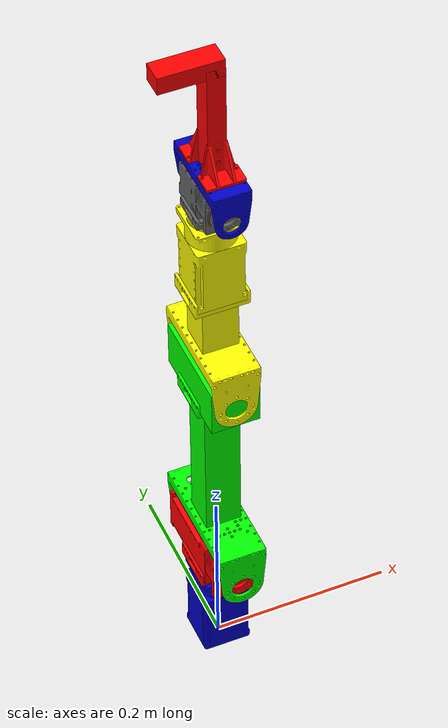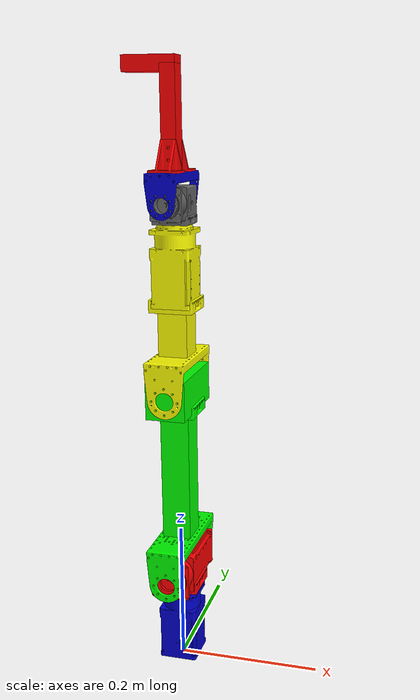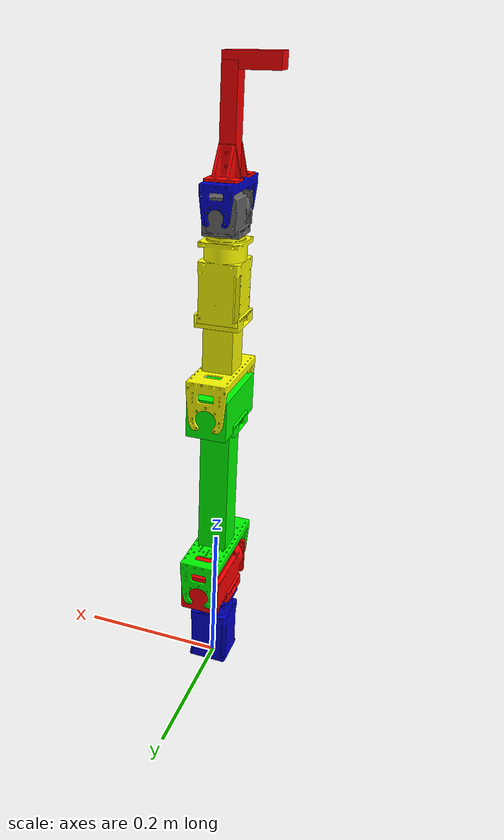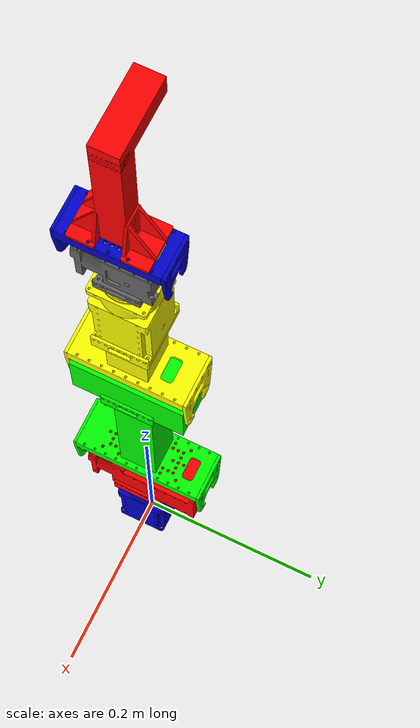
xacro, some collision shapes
<?xml version="1.0" ?>

<robot name="omnigrasper" xmlns:xacro="http://ros.org/wiki/xacro">

  <xacro:property name="joint1_vel" value="1.0"/>
  <xacro:property name="joint2_vel" value="1.0"/>
  <xacro:property name="joint3_vel" value="1.0"/>
  <xacro:property name="joint4_vel" value="1.0"/>
  <xacro:property name="joint5_vel" value="1.0"/>

  <xacro:property name="joint1_effort" value="5.0"/>
  <xacro:property name="joint2_effort" value="44.0"/>
  <xacro:property name="joint3_effort" value="44.0"/>
  <xacro:property name="joint4_effort" value="44.0"/>
  <xacro:property name="joint5_effort" value="20.0"/>

  <xacro:property name="joint1_min" value="${-pi/6}"/>
  <xacro:property name="joint1_max" value="${pi/6}"/>

  <xacro:property name="joint2_min" value="${-pi/6}"/>
  <xacro:property name="joint2_max" value="${pi/3}"/>

  <xacro:property name="joint3_min" value="${-pi/4}"/>
  <xacro:property name="joint3_max" value="${pi/2 + pi/4}"/>

  <xacro:property name="joint4_min" value="${-pi/100}"/>
  <xacro:property name="joint4_max" value="${pi/100}"/>

  <xacro:property name="joint5_min" value="${-pi/4}"/>
  <xacro:property name="joint5_max" value="${pi/2}"/>

  <material name="omni/Blue">
    <color rgba="0 0 0.8 1"/>
  </material>
  <material name="omni/Red">
    <color rgba="1 0 0 1"/>
  </material>
  <material name="omni/Green">
    <color rgba="0 1 0 1"/>
  </material>
  <material name="omni/Yellow">
    <color rgba="1 1 0 1"/>
  </material>
  <material name="omni/LightGrey">
    <color rgba="0.6 0.6 0.6 1"/>
  </material>
  <material name="omni/DarkGrey">
    <color rgba="0.4 0.4 0.4 1"/>
  </material>

  <link name="base_link">
  </link>
  <joint name="base_link_arm_base" type="fixed">
    <parent link="base_link"/>
    <child link="arm_base"/>
    <origin rpy="0 0 0" xyz="0 0 0.004"/>
  </joint>
  <link name="arm_base"/>
  <joint name="arm_base_arm_0" type="fixed">
    <parent link="arm_base"/>
    <child link="arm_0"/>
    <origin xyz="0 0 0.141" rpy="0 0 3.14159265359"/>
  </joint>
  <link name="arm_0">
    <visual>
      <origin rpy="1.57079632679 0 0" xyz="0 0 -0.141"/>
      <geometry>
        <mesh filename="../arm_meshes/L54-30-S500-R.STL" scale="0.001 0.001 0.001"/>
      </geometry>
      <material name="omni/Blue"/>
    </visual>
    <collision>
      <origin rpy="0 0 0" xyz="0 0 -0.087"/>
      <geometry>
        <box size="0.054 0.054 0.108"/>
      </geometry>
    </collision>
  </link>
  <joint name="arm_0_1" type="fixed">
    <parent link="arm_0"/>
    <child link="arm_1"/>
    <dynamics damping="0.25" friction="0.183333333"/>
    <limit effort="${joint1_effort}" lower="${joint1_min}" upper="${joint1_max}" velocity="${joint1_vel}"/>
    <origin rpy="0 0 0" xyz="0 0 0"/>
    <axis xyz="0 0 1"/>
  </joint>
  <link name="arm_1">
    <!-- For Box Collision Intertial -->
    <collision>
      <origin rpy="0 0 0" xyz="0 0 0"/>
      <geometry>
        <box size="0.054 0.132 0.054"/>
      </geometry>
    </collision>
    <inertial>
      <!-- center of mass -->
      <origin rpy="0 0 0" xyz="0 0 0"/>
      <mass value="0.855"/>
      <!-- box inertia: 1/12*m(y^2+z^2), ... -->
      <inertia ixx="0.001449225" ixy="0" ixz="0" iyy="0.00041553" iyz="0" izz="0.001449225"/>
    </inertial>
    <visual>
      <origin xyz="0 -0.066 0"/>
      <geometry>
        <mesh filename="../arm_meshes/H54-200-S500-R.STL" scale="0.001 0.001 0.001"/>
      </geometry>
      <material name="omni/Red"/>
    </visual>
    <!-- FRP54-A110 -->
    <visual>
      <origin rpy="1.57079632679 0 0" xyz="0 0 -0.033"/>
      <geometry>
        <mesh filename="../arm_meshes/FRP54-A110.STL" scale="0.001 0.001 0.001"/>
      </geometry>
      <material name="omni/Red"/>
    </visual>
  </link>
  <joint name="arm_1_2" type="revolute">
    <parent link="arm_1"/>
    <child link="arm_2_prev"/>
    <dynamics damping="4.47" friction="3.278"/>
    <limit effort="${joint2_effort}" lower="${joint2_min}" upper="${joint2_max}" velocity="${joint2_vel}"/>
    <origin rpy="1.57079632679 -1.57079632679 0" xyz="0 0 0"/>
    <axis xyz="0 0 -1"/>
  </joint>
  <link name="arm_2_prev">
    <!-- For Box Collision Intertial -->
    <collision>
      <origin rpy="0 0 0" xyz="0.0255 0 0"/>
      <geometry>
        <box size="0.054 0.054 0.15"/>
      </geometry>
    </collision>
    <inertial>
      <!-- center of mass -->
      <origin rpy="0 0 0" xyz="0.0255 0 0"/>
      <mass value="1e-05"/>
      <!-- box inertia: 1/12*m(y^2+z^2), ... -->
      <inertia ixx="2.118e-08" ixy="0" ixz="0" iyy="2.118e-08" iyz="0" izz="4.86e-09"/>
    </inertial>
  </link>
  <joint name="arm_2_prev_2" type="fixed">
    <parent link="arm_2_prev"/>
    <child link="arm_2"/>
    <origin rpy="0 0 0" xyz="0 0 0"/>
  </joint>
  <link name="arm_2">
    <!-- For Box Visual Collision Intertial -->
    <visual>
      <origin rpy="0 0 0" xyz="0.141 0 0"/>
      <geometry name="profile_2">
        <box size="0.18 0.04 0.04"/>
      </geometry>
      <material name="omni/Green"/>
    </visual>
    <collision>
      <origin rpy="0 0 0" xyz="0.141 0 0"/>
      <geometry>
        <box size="0.18 0.04 0.04"/>
      </geometry>
    </collision>
    <inertial>
      <!-- center of mass -->
      <origin rpy="0 0 0" xyz="0.141 0 0"/>
      <mass value="0.2484"/>
      <!-- box inertia: 1/12*m(y^2+z^2), ... -->
      <inertia ixx="6.624e-05" ixy="0" ixz="0" iyy="0.0007038" iyz="0" izz="0.0007038"/>
    </inertial>
    <!-- FRP54-H220 -->
    <visual>
      <origin rpy="0 3.14159265359 -1.57079632679" xyz="0 0 0"/>
      <geometry>
        <mesh filename="../arm_meshes/FRP54-H220.STL" scale="0.001 0.001 0.001"/>
      </geometry>
      <material name="omni/Green"/>
    </visual>
    <!-- FRP54-A110 -->
    <visual>
      <origin rpy="0 0 -1.57079632679" xyz="0.231 0 0"/>
      <geometry>
        <mesh filename="../arm_meshes/FRP54-A110.STL" scale="0.001 0.001 0.001"/>
      </geometry>
      <material name="omni/Green"/>
    </visual>
  </link>
  <joint name="arm_2_sub" type="fixed">
    <parent link="arm_2"/>
    <child link="arm_2_sub"/>
    <origin xyz="0 0 0"/>
  </joint>
  <link name="arm_2_sub">
    -

    <!-- For Box Collision Intertial -->
    <collision>
      <origin rpy="0 0 0" xyz="0.264 0 0"/>
      <geometry>
        <box size="0.054 0.054 0.114"/>
      </geometry>
    </collision>
    <inertial>
      <!-- center of mass -->
      <origin rpy="0 0 0" xyz="0.264 0 0"/>
      <mass value="0.662"/>
      <!-- box inertia: 1/12*m(y^2+z^2), ... -->
      <inertia ixx="0.000877812" ixy="0" ixz="0" iyy="0.000877812" iyz="0" izz="0.000321732"/>
    </inertial>
    <visual>
      <origin rpy="-1.57079632679 0 0" xyz="0.264 0 0.057"/>
      <geometry>
        <mesh filename="../arm_meshes/L54-50-S500-R.STL" scale="0.001 0.001 0.001"/>
      </geometry>
      <material name="omni/Green"/>
    </visual>
  </link>
  <joint name="arm_2_3" type="revolute">
    <parent link="arm_2"/>
    <child link="arm_3_prev"/>
    <dynamics damping="2.0" friction="1.02666666667"/>
    <limit effort="${joint3_effort}" lower="${joint3_min}" upper="${joint3_max}" velocity="${joint3_vel}"/>
    <origin rpy="0 0 -1.57079632679" xyz="0.264 0 0"/>
    <axis xyz="0 0 -1"/>
  </joint>
  <link name="arm_3_prev">
    <!-- For Box Collision Intertial -->
    <collision>
      <origin rpy="0 0 0" xyz="0 0.0255 0"/>
      <geometry>
        <box size="0.054 0.054 0.124"/>
      </geometry>
    </collision>
    <inertial>
      <!-- center of mass -->
      <origin rpy="0 0 0" xyz="0 0.0255 0"/>
      <mass value="1e-05"/>
      <!-- box inertia: 1/12*m(y^2+z^2), ... -->
      <inertia ixx="1.52433333333e-08" ixy="0" ixz="0" iyy="1.52433333333e-08" iyz="0" izz="4.86e-09"/>
    </inertial>
  </link>
  <joint name="arm_3_prev_3" type="fixed">
    <parent link="arm_3_prev"/>
    <child link="arm_3"/>
    <origin rpy="0 0 0" xyz="0 0 0"/>
  </joint>
  <link name="arm_3">
    <!-- For Box Visual Collision Intertial -->
    <visual>
      <origin rpy="0 0 0" xyz="0 0.081 0"/>
      <geometry name="profile_3">
        <box size="0.04 0.06 0.04"/>
      </geometry>
      <material name="omni/Yellow"/>
    </visual>
    <collision>
      <origin rpy="0 0 0" xyz="0 0.081 0"/>
      <geometry>
        <box size="0.04 0.06 0.04"/>
      </geometry>
    </collision>
    <inertial>
      <!-- center of mass -->
      <origin rpy="0 0 0" xyz="0 0.081 0"/>
      <mass value="0.0828"/>
      <!-- box inertia: 1/12*m(y^2+z^2), ... -->
      <inertia ixx="3.588e-05" ixy="0" ixz="0" iyy="2.208e-05" iyz="0" izz="3.588e-05"/>
    </inertial>
    <!-- FRP54-H120 -->
    <visual>
      <origin rpy="0 3.14159265359 0" xyz="0 0 0"/>
      <geometry>
        <mesh filename="../arm_meshes/FRP54-H120.STL" scale="0.001 0.001 0.001"/>
      </geometry>
      <material name="omni/Yellow"/>
    </visual>
    <!-- FRP54-A110 -->
    <visual>
      <origin rpy="0 0 0" xyz="0 0.111 0"/>
      <geometry>
        <mesh filename="../arm_meshes/FRP54-A110.STL" scale="0.001 0.001 0.001"/>
      </geometry>
      <material name="omni/Yellow"/>
    </visual>
  </link>
  <joint name="arm_3_sub" type="fixed">
    <parent link="arm_3"/>
    <child link="arm_3_sub"/>
    <origin xyz="0 0 0"/>
  </joint>
  <link name="arm_3_sub">
    <!-- For Box Collision Intertial -->
    <collision>
      <origin rpy="0 0 0" xyz="0 0.171 0"/>
      <geometry>
        <box size="0.054 0.108 0.054"/>
      </geometry>
    </collision>
    <inertial>
      <!-- center of mass -->
      <origin rpy="0 0 0" xyz="0 0.171 0"/>
      <mass value="0.612"/>
      <!-- box inertia: 1/12*m(y^2+z^2), ... -->
      <inertia ixx="0.00074358" ixy="0" ixz="0" iyy="0.000297432" iyz="0" izz="0.00074358"/>
    </inertial>
    <visual>
      <origin rpy="0 -3.14159265359 0" xyz="0 0.117 0"/>
      <geometry>
        <mesh filename="../arm_meshes/L54-30-S500-R.STL" scale="0.001 0.001 0.001"/>
      </geometry>
      <material name="omni/Yellow"/>
    </visual>
  </link>
  <joint name="arm_3_4" type="fixed">
    <parent link="arm_3"/>
    <child link="arm_4"/>
    <dynamics damping="0.25" friction="0.183333333"/>
    <limit effort="${joint4_effort}" lower="${joint4_min}" upper="${joint4_max}" velocity="${joint4_vel}"/>
    <origin rpy="-1.57079632679 0 0" xyz="0 0.252 0"/>
    <axis xyz="0 0 1"/>
  </joint>
  <link name="arm_4">
    <!-- For Box Collision Intertial -->
    <collision>
      <origin rpy="0 0 0" xyz="0 0.006 0"/>
      <geometry>
        <box size="0.042 0.072 0.042"/>
      </geometry>
    </collision>
    <inertial>
      <!-- center of mass -->
      <origin rpy="0 0 0" xyz="0 0.006 0"/>
      <mass value="0.257"/>
      <!-- box inertia: 1/12*m(y^2+z^2), ... -->
      <inertia ixx="0.000148803" ixy="0" ixz="0" iyy="7.5558e-05" iyz="0" izz="0.000148803"/>
    </inertial>
    <visual>
      <origin rpy="0 0 0" xyz="0 -0.03 0"/>
      <geometry>
        <mesh filename="../arm_meshes/L42-10-S300-R.STL" scale="0.001 0.001 0.001"/>
      </geometry>
      <material name="omni/DarkGrey"/>
    </visual>
    <!-- FRP42-A110 -->
    <visual>
      <origin rpy="1.57079632679 0 0" xyz="0 0 -0.027"/>
      <geometry>
        <mesh filename="../arm_meshes/FRP42-A110.STL" scale="0.001 0.001 0.001"/>
      </geometry>
      <material name="omni/DarkGrey"/>
    </visual>
  </link>
  <joint name="arm_4_5" type="fixed">
    <parent link="arm_4"/>
    <child link="arm_5"/>
    <dynamics damping="0.12" friction="0.183333333"/>
    <limit effort="${joint5_effort}" lower="${joint5_min}" upper="${joint5_max}" velocity="${joint5_vel}"/>
    <origin rpy="1.57079632679 0 0" xyz="0 0 0"/>
    <axis xyz="0 0 -1"/>
  </joint>
  <link name="arm_5">
    <!-- For Box Collision Intertial -->
    <collision>
      <origin rpy="0 0 0" xyz="0.0 0.018 -0.006"/>
      <geometry>
        <box size="0.042 0.042 0.073"/>
      </geometry>
    </collision>
    <inertial>
      <!-- center of mass -->
      <origin rpy="0 0 0" xyz="0.0 0.018 -0.006"/>
      <mass value="0.0857"/>
      <!-- box inertia: 1/12*m(y^2+z^2), ... -->
      <inertia ixx="5.06558416667e-05" ixy="0" ixz="0" iyy="5.06558416667e-05" iyz="0" izz="2.51958e-05"/>
    </inertial>
    <!-- FRP42-H120 -->
    <visual>
      <origin rpy="0 0 0" xyz="0 0 -0.006"/>
      <geometry>
        <mesh filename="../arm_meshes/FRP42-H120.STL" scale="0.001 0.001 0.001"/>
      </geometry>
      <material name="omni/Blue"/>
    </visual>
  </link>
  <joint name="arm_5_end" type="fixed">
    <parent link="arm_5"/>
    <child link="arm_link"/>
    <origin xyz="0 0.039 -0.006"/>
  </joint>
  <link name="arm_link">
    <!-- For Box Visual Collision Intertial -->
    <visual>
      <origin rpy="0 0 0" xyz="0 0.065 0"/>
      <geometry name="end_effector">
        <box size="0.02 0.13 0.025"/>
      </geometry>
      <material name="omni/Red"/>
    </visual>
    <collision>
      <origin rpy="0 0 0" xyz="0 0.065 0"/>
      <geometry>
        <box size="0.02 0.13 0.025"/>
      </geometry>
    </collision>
    <inertial>
      <!-- center of mass -->
      <origin rpy="0 0 0" xyz="0 0.065 0"/>
      <mass value="0.06"/>
      <!-- box inertia: 1/12*m(y^2+z^2), ... -->
      <inertia ixx="8.7625e-05" ixy="0" ixz="0" iyy="5.125e-06" iyz="0" izz="8.65e-05"/>
    </inertial>
    <!-- left hook interface -->
    <visual>
      <origin rpy="0 1.57079632679 0" xyz="-0.021 0 0.035"/>
      <geometry>
        <mesh filename="../arm_meshes/HookInterface.STL" scale="0.001 0.001 0.001"/>
      </geometry>
      <material name="omni/Red"/>
    </visual>
    <!-- right hook interface -->
    <visual>
      <origin rpy="0 -1.57079632679 0" xyz="0.021 0 -0.035"/>
      <geometry>
        <mesh filename="../arm_meshes/HookInterface.STL" scale="0.001 0.001 0.001"/>
      </geometry>
      <material name="omni/Red"/>
    </visual>
  </link>
  <joint name="arm_hook" type="fixed">
    <parent link="arm_link"/>
    <child link="arm_link2"/>
    <origin rpy="0 0 0" xyz="0 0.13 0"/>
  </joint>
  <link name="arm_link2">
    <!-- For Box Visual Collision Intertial -->
    <visual>
      <origin rpy="0 0 0" xyz="0.025 0 0"/>
      <geometry name="end_effector_2">
        <box size="0.07 0.02 0.025"/>
      </geometry>
      <material name="omni/Red"/>
    </visual>
    <collision>
      <origin rpy="0 0 0" xyz="0.025 0 0"/>
      <geometry>
        <box size="0.07 0.02 0.025"/>
      </geometry>
    </collision>
    <inertial>
      <!-- center of mass -->
      <origin rpy="0 0 0" xyz="0.025 0 0"/>
      <mass value="0.04"/>
      <!-- box inertia: 1/12*m(y^2+z^2), ... -->
      <inertia ixx="3.41666666667e-06" ixy="0" ixz="0" iyy="1.84166666667e-05" iyz="0" izz="1.76666666667e-05"/>
    </inertial>
  </link>
  <joint name="arm_end_eff" type="fixed">
    <parent link="arm_link2"/>
    <child link="end_eff"/>
    <origin rpy="-1.57079632679 3.14159265359 0" xyz="0.06 0 0"/>
  </joint>
  <link name="end_eff">
    <inertial>
      <!-- center of mass -->
      <origin rpy="0 0 0" xyz="0 0 0"/>
      <mass value="1e-6"/>
      <inertia ixx="1e-6" ixy="0" ixz="0" iyy="1e-6" iyz="0" izz="1e-6"/>
    </inertial>
  </link>
</robot>
